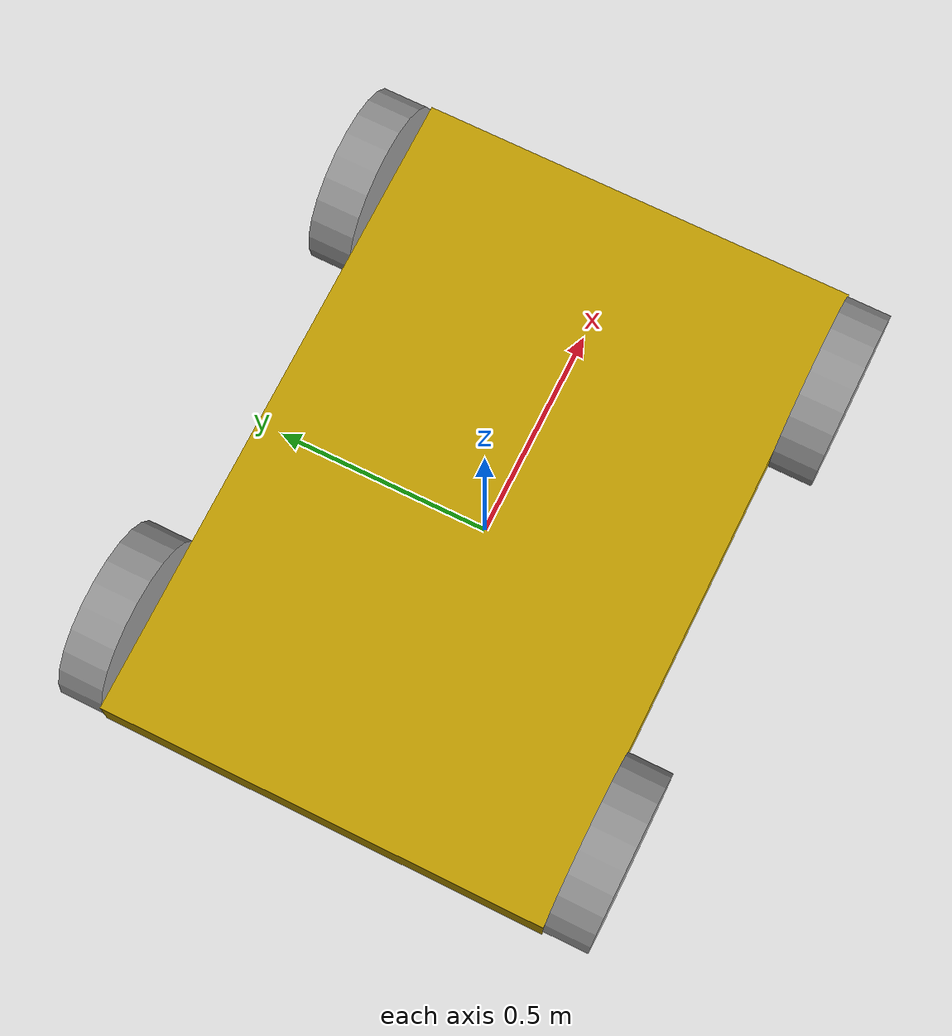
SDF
<?xml version='1.0'?>
<sdf version='1.7'>
  <model name='agv_big'>
    <link name='chassis'>
      <inertial>
        <mass>10</mass>
        <inertia>
          <ixx>0.841667</ixx>
          <ixy>0</ixy>
          <ixz>0</ixz>
          <iyy>3.34167</iyy>
          <iyz>0</iyz>
          <izz>4.16667</izz>
        </inertia>
        <pose>0 0 0 0 -0 0</pose>
      </inertial>
      <pose>-0 -0 0.2 0 -0 0</pose>
      <gravity>1</gravity>
      <self_collide>0</self_collide>
      <kinematic>0</kinematic>
      <enable_wind>0</enable_wind>
      <visual name='visual'>
        <pose>0 0 0 0 -0 0</pose>
        <geometry>
          <box>
            <size>1.5 1 0.1</size>
          </box>
        </geometry>
        <material>
          <lighting>1</lighting>
          <script>
            <uri>file://media/materials/scripts/gazebo.material</uri>
            <name>Gazebo/Grey</name>
          </script>
          <shader type='pixel'>
            <normal_map>__default__</normal_map>
          </shader>
          <ambient>0.769 0.627 0 1</ambient>
          <diffuse>0.7 0.7 0.7 1</diffuse>
          <specular>0.01 0.01 0.01 1</specular>
          <emissive>0 0 0 1</emissive>
        </material>
        <transparency>0</transparency>
        <cast_shadows>1</cast_shadows>
      </visual>
      <collision name='collision'>
        <laser_retro>0</laser_retro>
        <max_contacts>10</max_contacts>
        <pose>0 0 0 0 -0 0</pose>
        <geometry>
          <box>
            <size>1.5 1 0.1</size>
          </box>
        </geometry>
        <surface>
          <friction>
            <ode>
              <mu>1</mu>
              <mu2>1</mu2>
              <fdir1>0 0 0</fdir1>
              <slip1>0</slip1>
              <slip2>0</slip2>
            </ode>
            <torsional>
              <coefficient>1</coefficient>
              <patch_radius>0</patch_radius>
              <surface_radius>0</surface_radius>
              <use_patch_radius>1</use_patch_radius>
              <ode>
                <slip>0</slip>
              </ode>
            </torsional>
          </friction>
          <bounce>
            <restitution_coefficient>0</restitution_coefficient>
            <threshold>1e+06</threshold>
          </bounce>
          <contact>
            <collide_without_contact>0</collide_without_contact>
            <collide_without_contact_bitmask>1</collide_without_contact_bitmask>
            <collide_bitmask>1</collide_bitmask>
            <ode>
              <soft_cfm>0</soft_cfm>
              <soft_erp>0.2</soft_erp>
              <kp>1e+13</kp>
              <kd>1</kd>
              <max_vel>0.01</max_vel>
              <min_depth>0</min_depth>
            </ode>
            <bullet>
              <split_impulse>1</split_impulse>
              <split_impulse_penetration_threshold>-0.01</split_impulse_penetration_threshold>
              <soft_cfm>0</soft_cfm>
              <soft_erp>0.2</soft_erp>
              <kp>1e+13</kp>
              <kd>1</kd>
            </bullet>
          </contact>
        </surface>
      </collision>
    </link>
    <link name='left_wheel_front'>
      <inertial>
        <mass>1</mass>
        <inertia>
          <ixx>0.0108333</ixx>
          <ixy>0</ixy>
          <ixz>0</ixz>
          <iyy>0.0108333</iyy>
          <iyz>0</iyz>
          <izz>0.02</izz>
        </inertia>
        <pose>0 0 0 0 -0 0</pose>
      </inertial>
      <pose>0.55 0.55 0.2 1.5708 -0 0.000667</pose>
      <gravity>1</gravity>
      <self_collide>0</self_collide>
      <kinematic>0</kinematic>
      <enable_wind>0</enable_wind>
      <visual name='visual'>
        <pose>0 0 0 0 -0 0</pose>
        <geometry>
          <cylinder>
            <radius>0.2</radius>
            <length>0.1</length>
          </cylinder>
        </geometry>
        <material>
          <lighting>1</lighting>
          <script>
            <uri>file://media/materials/scripts/gazebo.material</uri>
            <name>Gazebo/Grey</name>
          </script>
          <shader type='pixel'>
            <normal_map>__default__</normal_map>
          </shader>
          <ambient>0.008 0.008 0.008 1</ambient>
          <diffuse>0.7 0.7 0.7 1</diffuse>
          <specular>0.01 0.01 0.01 1</specular>
          <emissive>0 0 0 1</emissive>
        </material>
        <transparency>0</transparency>
        <cast_shadows>1</cast_shadows>
      </visual>
      <collision name='collision'>
        <laser_retro>0</laser_retro>
        <max_contacts>10</max_contacts>
        <pose>0 0 0 0 -0 0</pose>
        <geometry>
          <cylinder>
            <radius>0.2</radius>
            <length>0.1</length>
          </cylinder>
        </geometry>
        <surface>
          <friction>
            <ode>
              <mu>2</mu>
              <mu2>2</mu2>
              <fdir1>0 0 0</fdir1>
              <slip1>0</slip1>
              <slip2>0</slip2>
            </ode>
            <torsional>
              <coefficient>1</coefficient>
              <patch_radius>0</patch_radius>
              <surface_radius>0</surface_radius>
              <use_patch_radius>1</use_patch_radius>
              <ode>
                <slip>0</slip>
              </ode>
            </torsional>
          </friction>
          <bounce>
            <restitution_coefficient>0</restitution_coefficient>
            <threshold>1e+06</threshold>
          </bounce>
          <contact>
            <collide_without_contact>0</collide_without_contact>
            <collide_without_contact_bitmask>1</collide_without_contact_bitmask>
            <collide_bitmask>1</collide_bitmask>
            <ode>
              <soft_cfm>0</soft_cfm>
              <soft_erp>0.2</soft_erp>
              <kp>1e+13</kp>
              <kd>1</kd>
              <max_vel>0.01</max_vel>
              <min_depth>0</min_depth>
            </ode>
            <bullet>
              <split_impulse>1</split_impulse>
              <split_impulse_penetration_threshold>-0.01</split_impulse_penetration_threshold>
              <soft_cfm>0</soft_cfm>
              <soft_erp>0.2</soft_erp>
              <kp>1e+13</kp>
              <kd>1</kd>
            </bullet>
          </contact>
        </surface>
      </collision>
    </link>
    <link name='left_wheel_rear'>
      <inertial>
        <mass>1</mass>
        <inertia>
          <ixx>0.0108333</ixx>
          <ixy>0</ixy>
          <ixz>0</ixz>
          <iyy>0.0108333</iyy>
          <iyz>0</iyz>
          <izz>0.02</izz>
        </inertia>
        <pose>0 0 0 0 -0 0</pose>
      </inertial>
      <pose>-0.55 0.55 0.2 1.5708 -0 0</pose>
      <gravity>1</gravity>
      <self_collide>0</self_collide>
      <kinematic>0</kinematic>
      <enable_wind>0</enable_wind>
      <visual name='visual'>
        <pose>0 0 0 0 -0 0</pose>
        <geometry>
          <cylinder>
            <radius>0.2</radius>
            <length>0.1</length>
          </cylinder>
        </geometry>
        <material>
          <lighting>1</lighting>
          <script>
            <uri>file://media/materials/scripts/gazebo.material</uri>
            <name>Gazebo/Grey</name>
          </script>
          <shader type='pixel'>
            <normal_map>__default__</normal_map>
          </shader>
          <ambient>0.008 0.008 0.008 1</ambient>
          <diffuse>0.7 0.7 0.7 1</diffuse>
          <specular>0.01 0.01 0.01 1</specular>
          <emissive>0 0 0 1</emissive>
        </material>
        <transparency>0</transparency>
        <cast_shadows>1</cast_shadows>
      </visual>
      <collision name='collision'>
        <laser_retro>0</laser_retro>
        <max_contacts>10</max_contacts>
        <pose>0 0 0 0 -0 0</pose>
        <geometry>
          <cylinder>
            <radius>0.2</radius>
            <length>0.1</length>
          </cylinder>
        </geometry>
        <surface>
          <friction>
            <ode>
              <mu>2</mu>
              <mu2>2</mu2>
              <fdir1>0 0 0</fdir1>
              <slip1>0</slip1>
              <slip2>0</slip2>
            </ode>
            <torsional>
              <coefficient>1</coefficient>
              <patch_radius>0</patch_radius>
              <surface_radius>0</surface_radius>
              <use_patch_radius>1</use_patch_radius>
              <ode>
                <slip>0</slip>
              </ode>
            </torsional>
          </friction>
          <bounce>
            <restitution_coefficient>0</restitution_coefficient>
            <threshold>1e+06</threshold>
          </bounce>
          <contact>
            <collide_without_contact>0</collide_without_contact>
            <collide_without_contact_bitmask>1</collide_without_contact_bitmask>
            <collide_bitmask>1</collide_bitmask>
            <ode>
              <soft_cfm>0</soft_cfm>
              <soft_erp>0.2</soft_erp>
              <kp>1e+13</kp>
              <kd>1</kd>
              <max_vel>0.01</max_vel>
              <min_depth>0</min_depth>
            </ode>
            <bullet>
              <split_impulse>1</split_impulse>
              <split_impulse_penetration_threshold>-0.01</split_impulse_penetration_threshold>
              <soft_cfm>0</soft_cfm>
              <soft_erp>0.2</soft_erp>
              <kp>1e+13</kp>
              <kd>1</kd>
            </bullet>
          </contact>
        </surface>
      </collision>
    </link>
    <link name='right_wheel_front'>
      <inertial>
        <mass>1</mass>
        <inertia>
          <ixx>0.0108333</ixx>
          <ixy>0</ixy>
          <ixz>0</ixz>
          <iyy>0.0108333</iyy>
          <iyz>0</iyz>
          <izz>0.02</izz>
        </inertia>
        <pose>0 0 0 0 -0 0</pose>
      </inertial>
      <pose>0.55 -0.55 0.2 1.5708 -0 0.000667</pose>
      <gravity>1</gravity>
      <self_collide>0</self_collide>
      <kinematic>0</kinematic>
      <enable_wind>0</enable_wind>
      <visual name='visual'>
        <pose>0 0 0 0 -0 0</pose>
        <geometry>
          <cylinder>
            <radius>0.2</radius>
            <length>0.1</length>
          </cylinder>
        </geometry>
        <material>
          <lighting>1</lighting>
          <script>
            <uri>file://media/materials/scripts/gazebo.material</uri>
            <name>Gazebo/Grey</name>
          </script>
          <shader type='pixel'>
            <normal_map>__default__</normal_map>
          </shader>
          <ambient>0 0 0 1</ambient>
          <diffuse>0.7 0.7 0.7 1</diffuse>
          <specular>0.01 0.01 0.01 1</specular>
          <emissive>0 0 0 1</emissive>
        </material>
        <transparency>0</transparency>
        <cast_shadows>1</cast_shadows>
      </visual>
      <collision name='collision'>
        <laser_retro>0</laser_retro>
        <max_contacts>10</max_contacts>
        <pose>0 0 0 0 -0 0</pose>
        <geometry>
          <cylinder>
            <radius>0.2</radius>
            <length>0.1</length>
          </cylinder>
        </geometry>
        <surface>
          <friction>
            <ode>
              <mu>2</mu>
              <mu2>2</mu2>
              <fdir1>0 0 0</fdir1>
              <slip1>0</slip1>
              <slip2>0</slip2>
            </ode>
            <torsional>
              <coefficient>1</coefficient>
              <patch_radius>0</patch_radius>
              <surface_radius>0</surface_radius>
              <use_patch_radius>1</use_patch_radius>
              <ode>
                <slip>0</slip>
              </ode>
            </torsional>
          </friction>
          <bounce>
            <restitution_coefficient>0</restitution_coefficient>
            <threshold>1e+06</threshold>
          </bounce>
          <contact>
            <collide_without_contact>0</collide_without_contact>
            <collide_without_contact_bitmask>1</collide_without_contact_bitmask>
            <collide_bitmask>1</collide_bitmask>
            <ode>
              <soft_cfm>0</soft_cfm>
              <soft_erp>0.2</soft_erp>
              <kp>1e+13</kp>
              <kd>1</kd>
              <max_vel>0.01</max_vel>
              <min_depth>0</min_depth>
            </ode>
            <bullet>
              <split_impulse>1</split_impulse>
              <split_impulse_penetration_threshold>-0.01</split_impulse_penetration_threshold>
              <soft_cfm>0</soft_cfm>
              <soft_erp>0.2</soft_erp>
              <kp>1e+13</kp>
              <kd>1</kd>
            </bullet>
          </contact>
        </surface>
      </collision>
    </link>
    <link name='right_wheel_rear'>
      <inertial>
        <mass>1</mass>
        <inertia>
          <ixx>0.0108333</ixx>
          <ixy>0</ixy>
          <ixz>0</ixz>
          <iyy>0.0108333</iyy>
          <iyz>0</iyz>
          <izz>0.02</izz>
        </inertia>
        <pose>0 0 0 0 -0 0</pose>
      </inertial>
      <pose>-0.55 -0.55 0.2 1.5708 -0 0</pose>
      <gravity>1</gravity>
      <self_collide>0</self_collide>
      <kinematic>0</kinematic>
      <enable_wind>0</enable_wind>
      <visual name='visual'>
        <pose>0 0 0 0 -0 0</pose>
        <geometry>
          <cylinder>
            <radius>0.2</radius>
            <length>0.1</length>
          </cylinder>
        </geometry>
        <material>
          <lighting>1</lighting>
          <script>
            <uri>file://media/materials/scripts/gazebo.material</uri>
            <name>Gazebo/Grey</name>
          </script>
          <shader type='pixel'>
            <normal_map>__default__</normal_map>
          </shader>
          <ambient>0 0 0 1</ambient>
          <diffuse>0.7 0.7 0.7 1</diffuse>
          <specular>0.01 0.01 0.01 1</specular>
          <emissive>0 0 0 1</emissive>
        </material>
        <transparency>0</transparency>
        <cast_shadows>1</cast_shadows>
      </visual>
      <collision name='collision'>
        <laser_retro>0</laser_retro>
        <max_contacts>10</max_contacts>
        <pose>0 0 0 0 -0 0</pose>
        <geometry>
          <cylinder>
            <radius>0.2</radius>
            <length>0.1</length>
          </cylinder>
        </geometry>
        <surface>
          <friction>
            <ode>
              <mu>2</mu>
              <mu2>2</mu2>
              <fdir1>0 0 0</fdir1>
              <slip1>0</slip1>
              <slip2>0</slip2>
            </ode>
            <torsional>
              <coefficient>1</coefficient>
              <patch_radius>0</patch_radius>
              <surface_radius>0</surface_radius>
              <use_patch_radius>1</use_patch_radius>
              <ode>
                <slip>0</slip>
              </ode>
            </torsional>
          </friction>
          <bounce>
            <restitution_coefficient>0</restitution_coefficient>
            <threshold>1e+06</threshold>
          </bounce>
          <contact>
            <collide_without_contact>0</collide_without_contact>
            <collide_without_contact_bitmask>1</collide_without_contact_bitmask>
            <collide_bitmask>1</collide_bitmask>
            <ode>
              <soft_cfm>0</soft_cfm>
              <soft_erp>0.2</soft_erp>
              <kp>1e+13</kp>
              <kd>1</kd>
              <max_vel>0.01</max_vel>
              <min_depth>0</min_depth>
            </ode>
            <bullet>
              <split_impulse>1</split_impulse>
              <split_impulse_penetration_threshold>-0.01</split_impulse_penetration_threshold>
              <soft_cfm>0</soft_cfm>
              <soft_erp>0.2</soft_erp>
              <kp>1e+13</kp>
              <kd>1</kd>
            </bullet>
          </contact>
        </surface>
      </collision>
    </link>
    <joint name='left_wheel_front_joint' type='revolute'>
      <parent>chassis</parent>
      <child>left_wheel_front</child>
      <pose>0 0 0 0 -0 0</pose>
      <axis>
        <xyz>0 0 -1</xyz>
        <limit>
          <lower>-1e+16</lower>
          <upper>1e+16</upper>
          <effort>-1</effort>
          <velocity>-1</velocity>
        </limit>
        <dynamics>
          <spring_reference>0</spring_reference>
          <spring_stiffness>0</spring_stiffness>
          <damping>0</damping>
          <friction>0</friction>
        </dynamics>
      </axis>
      <physics>
        <ode>
          <limit>
            <cfm>0</cfm>
            <erp>0.2</erp>
          </limit>
          <suspension>
            <cfm>0</cfm>
            <erp>0.2</erp>
          </suspension>
        </ode>
      </physics>
    </joint>
    <joint name='left_wheel_rear_joint' type='revolute'>
      <parent>chassis</parent>
      <child>left_wheel_rear</child>
      <pose>0 0 0 0 -0 0</pose>
      <axis>
        <xyz>0 0 -1</xyz>
        <limit>
          <lower>-1.79769e+308</lower>
          <upper>1.79769e+308</upper>
          <effort>-1</effort>
          <velocity>-1</velocity>
        </limit>
        <dynamics>
          <spring_reference>0</spring_reference>
          <spring_stiffness>0</spring_stiffness>
          <damping>0</damping>
          <friction>0</friction>
        </dynamics>
      </axis>
      <physics>
        <ode>
          <limit>
            <cfm>0</cfm>
            <erp>0.2</erp>
          </limit>
          <suspension>
            <cfm>0</cfm>
            <erp>0.2</erp>
          </suspension>
        </ode>
      </physics>
    </joint>
    <joint name='right_wheel_front_joint' type='revolute'>
      <parent>chassis</parent>
      <child>right_wheel_front</child>
      <pose>0 0 0 0 -0 0</pose>
      <axis>
        <xyz>0 0 -1</xyz>
        <limit>
          <lower>-1e+16</lower>
          <upper>1e+16</upper>
          <effort>-1</effort>
          <velocity>-1</velocity>
        </limit>
        <dynamics>
          <spring_reference>0</spring_reference>
          <spring_stiffness>0</spring_stiffness>
          <damping>0</damping>
          <friction>0</friction>
        </dynamics>
      </axis>
      <physics>
        <ode>
          <limit>
            <cfm>0</cfm>
            <erp>0.2</erp>
          </limit>
          <suspension>
            <cfm>0</cfm>
            <erp>0.2</erp>
          </suspension>
        </ode>
      </physics>
    </joint>
    <joint name='right_wheel_rear_joint' type='revolute'>
      <parent>chassis</parent>
      <child>right_wheel_rear</child>
      <pose>0 0 0 0 -0 0</pose>
      <axis>
        <xyz>0 0 -1</xyz>
        <limit>
          <lower>-1.79769e+308</lower>
          <upper>1.79769e+308</upper>
          <effort>-1</effort>
          <velocity>-1</velocity>
        </limit>
        <dynamics>
          <spring_reference>0</spring_reference>
          <spring_stiffness>0</spring_stiffness>
          <damping>0</damping>
          <friction>0</friction>
        </dynamics>
      </axis>
      <physics>
        <ode>
          <limit>
            <cfm>0</cfm>
            <erp>0.2</erp>
          </limit>
          <suspension>
            <cfm>0</cfm>
            <erp>0.2</erp>
          </suspension>
        </ode>
      </physics>
    </joint>
    <static>0</static>
    <allow_auto_disable>1</allow_auto_disable>
    <plugin name='differential_drive_controller' filename='libgazebo_ros_diff_drive.so'>
      <ros>
        <namespace>/agv</namespace>
      </ros>
      <num_wheel_pairs>2</num_wheel_pairs>
      <left_joint>left_wheel_front_joint</left_joint>
      <left_joint>left_wheel_rear_joint</left_joint>
      <right_joint>right_wheel_front_joint</right_joint>
      <right_joint>right_wheel_rear_joint</right_joint>
      <wheel_separation>1.1</wheel_separation>
      <wheel_separation>1.1</wheel_separation>
      <wheel_diameter>0.4</wheel_diameter>
      <wheel_diameter>0.4</wheel_diameter>
      <max_wheel_torque>200</max_wheel_torque>
      <max_wheel_acceleration>1.0</max_wheel_acceleration>
      <publish_odom>1</publish_odom>
      <odometry_frame>odom</odometry_frame>
      <robot_base_frame>chassis</robot_base_frame>
      <update_rate>100.0</update_rate>
    </plugin>
  </model>
</sdf>
